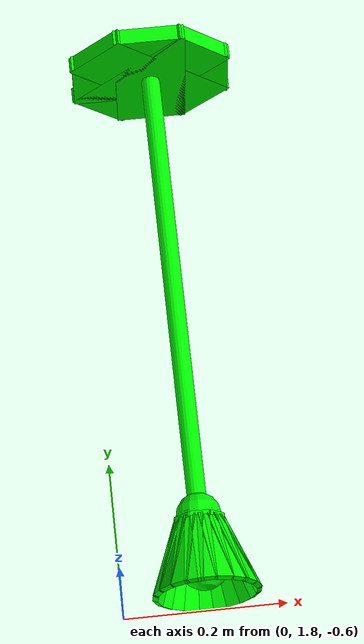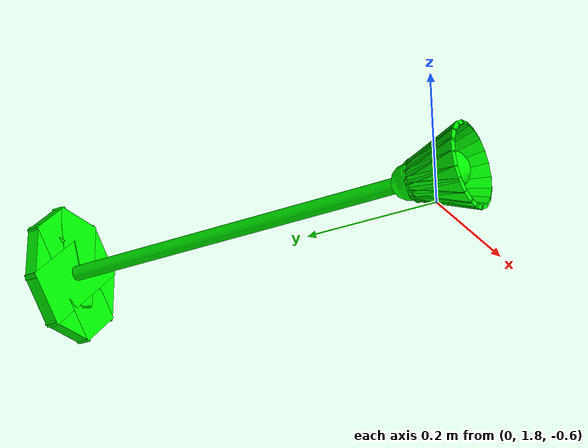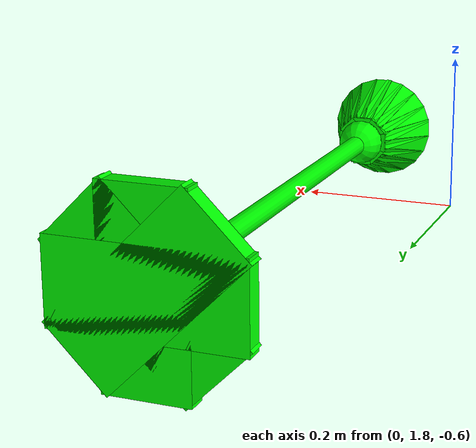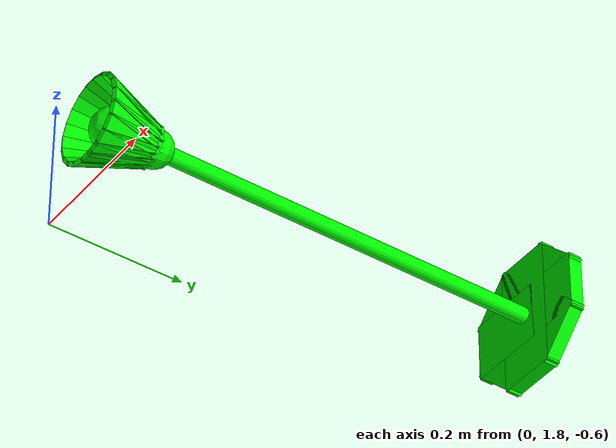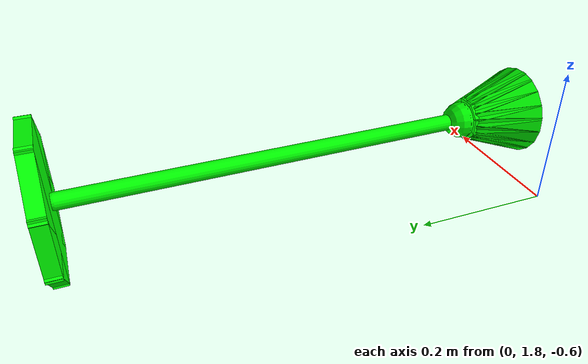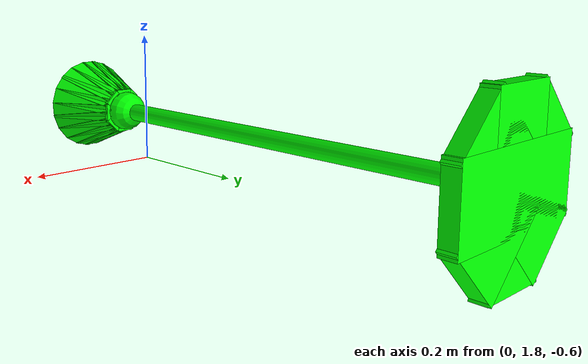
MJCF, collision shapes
<mujoco model="LightFixture_a671818b">
  <compiler autolimits="true" boundmass="0.01" angle="radian"/>
  <default>
    <default class="/">
      <default class="__VISUAL_MJT__">
        <geom contype="0" conaffinity="0" group="0" mass="1e-08"/>
      </default>
      <default class="__STRUCTURAL_MJT__">
        <geom contype="8" conaffinity="15" group="4" friction="0.90000000000000002 0.90000000000000002 0.001" density="500" solref="0.025000000000000001 1" solimp="0.998 0.998 0.001"/>
      </default>
      <default class="__DYNAMIC_MJT__">
        <geom contype="1" conaffinity="15" group="4" friction="0.90000000000000002 0.90000000000000002 0.001" density="500" solref="0.025000000000000001 1" solimp="0.998 0.998 0.001"/>
      </default>
      <default class="__ARTICULABLE_DYNAMIC_MJT__">
        <geom contype="0" conaffinity="7" group="4" friction="0.90000000000000002 0.90000000000000002 0.001" density="500" solref="0.025000000000000001 1" solimp="0.998 0.998 0.001"/>
      </default>
    </default>
  </default>
  <asset>
    <material name="material_Glass_Detailed_Lit_Medium_Mat" class="/" specular="0.5" shininess="0.5" rgba="1 1 1 0.10000000000000001"/>
    <texture name="Copper_AlbedoTransparency" type="2d" file="Copper_AlbedoTransparency.png"/>
    <material name="material_Copper_AlbedoTransparency" class="/" texture="Copper_AlbedoTransparency" specular="0.5" shininess="0.5" rgba="1 1 1 1"/>
    <material name="material_ToasterDarkMat" class="/" specular="0.5" shininess="0.5" rgba="0.048307559999999999 0.047520819999999998 0.05379747 1"/>
    <material name="material_Light" class="/" specular="0.5" shininess="0.5" rgba="1 0.94411769999999995 0.86029409999999995 1"/>
    <mesh name="LightFixture_a671818b_LightFixture_a671818b_0" class="/" file="LightFixture_a671818b_LightFixture_a671818b/LightFixture_a671818b_LightFixture_a671818b_0.obj" scale="1 1 1" inertia="legacy"/>
    <mesh name="LightFixture_a671818b_LightFixture_a671818b_1" class="/" file="LightFixture_a671818b_LightFixture_a671818b/LightFixture_a671818b_LightFixture_a671818b_1.obj" scale="1 1 1" inertia="legacy"/>
    <mesh name="LightFixture_a671818b_LightFixture_a671818b_2" class="/" file="LightFixture_a671818b_LightFixture_a671818b/LightFixture_a671818b_LightFixture_a671818b_2.obj" scale="1 1 1" inertia="legacy"/>
    <mesh name="LightFixture_a671818b_LightFixture_a671818b_3" class="/" file="LightFixture_a671818b_LightFixture_a671818b/LightFixture_a671818b_LightFixture_a671818b_3.obj" scale="1 1 1" inertia="legacy"/>
  </asset>
  <worldbody>
    <body name="LightFixture_a671818b">
      <body name="LightFixture_a671818b_LightFixture_a671818b" pos="-0 0 0" quat="1 0 0 0">
        <geom name="LightFixture_a671818b_LightFixture_a671818b_0" class="__VISUAL_MJT__" type="mesh" material="material_Glass_Detailed_Lit_Medium_Mat" mesh="LightFixture_a671818b_LightFixture_a671818b_0"/>
        <geom name="LightFixture_a671818b_LightFixture_a671818b_1" class="__VISUAL_MJT__" type="mesh" material="material_Copper_AlbedoTransparency" mesh="LightFixture_a671818b_LightFixture_a671818b_1"/>
        <geom name="LightFixture_a671818b_LightFixture_a671818b_2" class="__VISUAL_MJT__" type="mesh" material="material_ToasterDarkMat" mesh="LightFixture_a671818b_LightFixture_a671818b_2"/>
        <geom name="LightFixture_a671818b_LightFixture_a671818b_3" class="__VISUAL_MJT__" type="mesh" material="material_Light" mesh="LightFixture_a671818b_LightFixture_a671818b_3"/>
        <geom name="LightFixture_a671818b_LightFixture_a671818b_PrimitiveCollider_0" class="__DYNAMIC_MJT__" type="box" size="0.044754870235919952 0.010146094486117363 0.099600106477737427" rgba="0 1 0 1" pos="0.099999994039535522 2.4907031059265137 -0.5" quat="0 1 0 0"/>
        <geom name="LightFixture_a671818b_LightFixture_a671818b_PrimitiveCollider_1" class="__DYNAMIC_MJT__" type="box" size="0.044754870235919952 0.010146094486117363 0.099600106477737427" rgba="0 1 0 1" pos="0.099999994039535522 2.4907031059265137 -0.5" quat="0 0.70710716861662282 0 -0.70710639375626005"/>
        <geom name="LightFixture_a671818b_LightFixture_a671818b_PrimitiveCollider_2" class="__DYNAMIC_MJT__" type="box" size="0.044754866510629654 0.010146094486117363 0.099600091576576233" rgba="0 1 0 1" pos="0.099999994039535522 2.4907031059265137 -0.5" quat="0 0.3826837590247722 0 -0.92387939720434842"/>
        <geom name="LightFixture_a671818b_LightFixture_a671818b_PrimitiveCollider_3" class="__DYNAMIC_MJT__" type="box" size="0.044754870235919952 0.010146094486117363 0.099600106477737427" rgba="0 1 0 1" pos="0.099999994039535522 2.4907031059265137 -0.5" quat="0 0.92387944627232255 0 -0.38268364056430054"/>
        <geom name="LightFixture_a671818b_LightFixture_a671818b_PrimitiveCollider_4" class="__DYNAMIC_MJT__" type="capsule" size="0.011795935221016407 0.28961301129311323" rgba="0 1 0 1" pos="0.099999994039535522 2.1875855922698975 -0.5" quat="0.65328142145803181 0.65328142145803192 0.27059819729217222 -0.27059819729217227"/>
        <geom name="LightFixture_a671818b_LightFixture_a671818b_PrimitiveCollider_5" class="__DYNAMIC_MJT__" type="capsule" size="0.02753765881061554 1.0000000000000001e-05" rgba="0 1 0 1" pos="0.099999994039535522 1.8879337310791016 -0.5" quat="0.65328142145803181 0.65328142145803192 0.27059819729217222 -0.27059819729217227"/>
        <geom name="LightFixture_a671818b_LightFixture_a671818b_PrimitiveCollider_6" class="__DYNAMIC_MJT__" type="box" size="0.011454922147095203 0.0032480955123901367 0.030229024589061737" rgba="0 1 0 1" pos="0.099999994039535522 1.880601167678833 -0.5" quat="0 1 0 0"/>
        <geom name="LightFixture_a671818b_LightFixture_a671818b_PrimitiveCollider_7" class="__DYNAMIC_MJT__" type="box" size="0.011454922147095203 0.0032480955123901367 0.030229024589061737" rgba="0 1 0 1" pos="0.099999994039535522 1.880601167678833 -0.5" quat="0 0.70710716861662282 0 -0.70710639375626005"/>
        <geom name="LightFixture_a671818b_LightFixture_a671818b_PrimitiveCollider_8" class="__DYNAMIC_MJT__" type="box" size="0.011454921215772629 0.0032480955123901367 0.030229020863771439" rgba="0 1 0 1" pos="0.099999994039535522 1.880601167678833 -0.5" quat="0 0.3826837590247722 0 -0.92387939720434842"/>
        <geom name="LightFixture_a671818b_LightFixture_a671818b_PrimitiveCollider_9" class="__DYNAMIC_MJT__" type="box" size="0.011454922147095203 0.0032480955123901367 0.030229024589061737" rgba="0 1 0 1" pos="0.099999994039535522 1.880601167678833 -0.5" quat="0 0.92387944627232255 0 -0.38268364056430054"/>
        <geom name="LightFixture_a671818b_LightFixture_a671818b_PrimitiveCollider_10" class="__DYNAMIC_MJT__" type="capsule" size="0.031119788065552711 0.015546990558505058" rgba="0 1 0 1" pos="0.099999994039535522 1.8424336910247803 -0.5" quat="0.65328142145803181 0.65328142145803192 0.27059819729217222 -0.27059819729217227"/>
        <geom name="LightFixture_a671818b_LightFixture_a671818b_PrimitiveCollider_11" class="__DYNAMIC_MJT__" type="box" size="0.011454927735030651 0.003248095978051424 0.048705104738473892" rgba="0 1 0 1" pos="0.099999994039535522 1.8348104953765869 -0.4562402069568634" quat="0 0 0.56462786680718169 -0.82534560762432829"/>
        <geom name="LightFixture_a671818b_LightFixture_a671818b_PrimitiveCollider_12" class="__DYNAMIC_MJT__" type="box" size="0.011454922147095203 0.003248095978051424 0.048705101013183594" rgba="0 1 0 1" pos="0.099999994039535522 1.8348104953765869 -0.54375982284545898" quat="0.56462786680718169 0.82534560762432829 0 0"/>
        <geom name="LightFixture_a671818b_LightFixture_a671818b_PrimitiveCollider_13" class="__DYNAMIC_MJT__" type="box" size="0.011454921215772629 0.0032480955123901367 0.048705093562602997" rgba="0 1 0 1" pos="0.11371384561061859 1.8348104953765869 -0.45844459533691406" quat="-0.08960984723342473 -0.13098731748194209 0.55747169729439694 -0.81488508677812455"/>
        <geom name="LightFixture_a671818b_LightFixture_a671818b_PrimitiveCollider_14" class="__DYNAMIC_MJT__" type="box" size="0.011454921215772629 0.0032480955123901367 0.048705093562602997" rgba="0 1 0 1" pos="0.086286142468452454 1.8348104953765869 -0.54155540466308594" quat="0.55747169729439694 0.81488508677812455 0.08960984723342473 -0.13098731748194209"/>
        <geom name="LightFixture_a671818b_LightFixture_a671818b_PrimitiveCollider_15" class="__DYNAMIC_MJT__" type="box" size="0.011454927735030651 0.0032480955123901367 0.048705112189054489" rgba="0 1 0 1" pos="0.12679602205753326 1.8348104953765869 -0.46540385484695435" quat="-0.18270228005644074 -0.26706536438564932 0.53425130896241579 -0.78094270396725241"/>
        <geom name="LightFixture_a671818b_LightFixture_a671818b_PrimitiveCollider_16" class="__DYNAMIC_MJT__" type="box" size="0.011454923078417778 0.0032480955123901367 0.048705101013183594" rgba="0 1 0 1" pos="0.073203966021537781 1.8348104953765869 -0.53459614515304565" quat="0.53425130896241579 0.78094270396725241 0.18270228005644074 -0.26706536438564932"/>
        <geom name="LightFixture_a671818b_LightFixture_a671818b_PrimitiveCollider_17" class="__DYNAMIC_MJT__" type="box" size="0.011454924941062927 0.003248095978051424 0.048705104738473892" rgba="0 1 0 1" pos="0.13529318571090698 1.8348104953765869 -0.47412893176078796" quat="-0.25526990063607841 -0.37314114874816606 0.50362876230497933 -0.73618002602576793"/>
        <geom name="LightFixture_a671818b_LightFixture_a671818b_PrimitiveCollider_18" class="__DYNAMIC_MJT__" type="box" size="0.011454922147095203 0.003248095978051424 0.048705104738473892" rgba="0 1 0 1" pos="0.064706809818744659 1.8348104953765869 -0.52587109804153442" quat="0.50362876230497933 0.73618002602576793 0.25526990063607841 -0.37314114874816606"/>
        <geom name="LightFixture_a671818b_LightFixture_a671818b_PrimitiveCollider_19" class="__DYNAMIC_MJT__" type="box" size="0.011454925872385502 0.003248095978051424 0.048705104738473892" rgba="0 1 0 1" pos="0.14197434484958649 1.8348104953765869 -0.48762774467468262" quat="-0.33813346229384855 -0.49426707414429566 0.45218402208039071 -0.66098065877089984"/>
        <geom name="LightFixture_a671818b_LightFixture_a671818b_PrimitiveCollider_20" class="__DYNAMIC_MJT__" type="box" size="0.011454924941062927 0.003248095978051424 0.048705104738473892" rgba="0 1 0 1" pos="0.058025632053613663 1.8348104953765869 -0.51237231492996216" quat="0.45218402208039071 0.66098065877089984 0.33813346229384855 -0.49426707414429566"/>
        <geom name="LightFixture_a671818b_LightFixture_a671818b_PrimitiveCollider_21" class="__DYNAMIC_MJT__" type="box" size="0.011454925872385502 0.0032480962108820677 0.048705104738473892" rgba="0 1 0 1" pos="0.1436932384967804 1.8348104953765869 -0.50241243839263916" quat="-0.41010985121944132 -0.59947868307676289 0.38809088357610189 -0.56729241538596165"/>
        <geom name="LightFixture_a671818b_LightFixture_a671818b_PrimitiveCollider_22" class="__DYNAMIC_MJT__" type="box" size="0.011454925872385502 0.0032480962108820677 0.048705104738473892" rgba="0 1 0 1" pos="0.056306738406419754 1.8348104953765869 -0.49758753180503845" quat="0.38809088357610189 0.56729241538596165 0.41010985121944132 -0.59947868307676289"/>
        <geom name="LightFixture_a671818b_LightFixture_a671818b_PrimitiveCollider_23" class="__DYNAMIC_MJT__" type="box" size="0.011454922147095203 0.0032480955123901367 0.048705093562602997" rgba="0 1 0 1" pos="0.14107394218444824 1.8348104953765869 -0.51509475708007812" quat="-0.46301987215692536 -0.67681991247790263 0.3231366238250547 -0.4723453465465009"/>
        <geom name="LightFixture_a671818b_LightFixture_a671818b_PrimitiveCollider_24" class="__DYNAMIC_MJT__" type="box" size="0.011454922147095203 0.0032480955123901367 0.048705093562602997" rgba="0 1 0 1" pos="0.058926049619913101 1.8348104953765869 -0.48490527272224426" quat="0.3231366238250547 0.4723453465465009 0.46301987215692536 -0.67681991247790263"/>
        <geom name="LightFixture_a671818b_LightFixture_a671818b_PrimitiveCollider_25" class="__DYNAMIC_MJT__" type="box" size="0.011454922147095203 0.0032480955123901367 0.048705101013183594" rgba="0 1 0 1" pos="0.13405239582061768 1.8348104953765869 -0.52748370170593262" quat="-0.50942735963853325 -0.74465625162272842 0.2434920178538362 -0.35592480864975906"/>
        <geom name="LightFixture_a671818b_LightFixture_a671818b_PrimitiveCollider_26" class="__DYNAMIC_MJT__" type="box" size="0.011454924941062927 0.0032480955123901367 0.048705101013183594" rgba="0 1 0 1" pos="0.065947592258453369 1.8348104953765869 -0.47251629829406738" quat="0.2434920178538362 0.35592480864975906 0.50942735963853325 -0.74465625162272842"/>
        <geom name="LightFixture_a671818b_LightFixture_a671818b_PrimitiveCollider_27" class="__DYNAMIC_MJT__" type="box" size="0.011454921215772629 0.0032480950467288494 0.048705093562602997" rgba="0 1 0 1" pos="0.1228705421090126 1.8348104953765869 -0.53730762004852295" quat="-0.54341650809533937 -0.79433984734331475 0.15330733584660886 -0.22409722539041504"/>
        <geom name="LightFixture_a671818b_LightFixture_a671818b_PrimitiveCollider_28" class="__DYNAMIC_MJT__" type="box" size="0.011454921215772629 0.0032480950467288494 0.048705089837312698" rgba="0 1 0 1" pos="0.077129445970058441 1.8348104953765869 -0.46269237995147705" quat="0.15330733584660886 0.22409722539041504 0.54341650809533937 -0.79433984734331475"/>
        <geom name="LightFixture_a671818b_LightFixture_a671818b_PrimitiveCollider_29" class="__DYNAMIC_MJT__" type="box" size="0.011454922147095203 0.0032480950467288494 0.048705093562602997" rgba="0 1 0 1" pos="0.11095008254051208 1.8348104953765869 -0.54236763715744019" quat="-0.56011909386201053 -0.81875491346562002 0.071212515412630864 -0.10409500475868795"/>
        <geom name="LightFixture_a671818b_LightFixture_a671818b_PrimitiveCollider_30" class="__DYNAMIC_MJT__" type="box" size="0.011454922147095203 0.0032480950467288494 0.048705093562602997" rgba="0 1 0 1" pos="0.08904990553855896 1.8348104953765869 -0.45763236284255981" quat="0.071212515412630864 0.10409500475868795 0.56011909386201053 -0.81875491346562002"/>
      </body>
    </body>
  </worldbody>
</mujoco>
